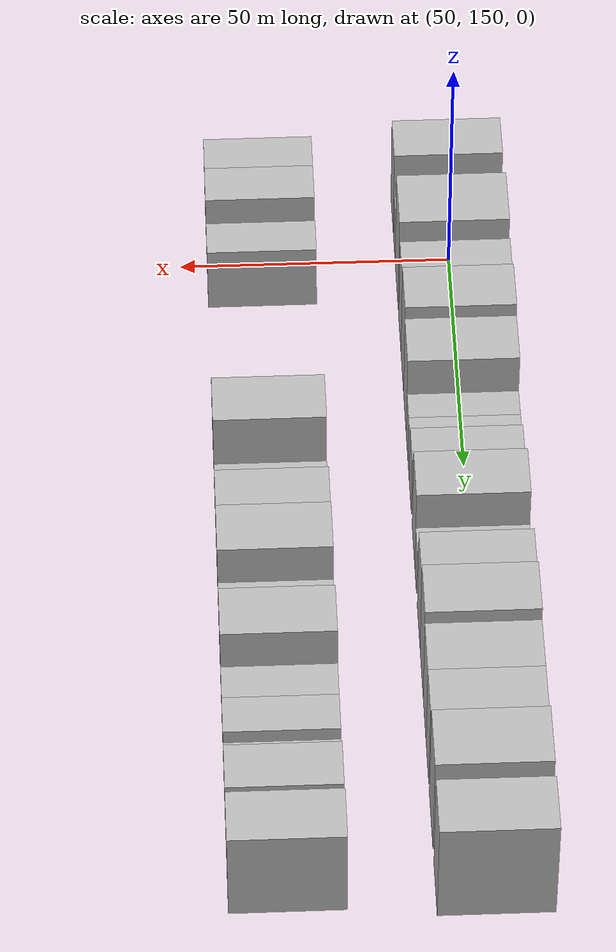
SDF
<sdf version="1.6">
 <world name="default">
  <model name="building_46">
   <static>1</static>
   <pose>50.0000 138.4492 0 0.000000 0.000000 0.000000</pose>
   <link name="link">
    <pose>0 0 10.50 0 0 0</pose>
    <collision name="collision"><geometry><box><size>20.0000 8.9101 21.0000</size></box></geometry></collision>
    <visual name="visual">
     <cast_shadows>0</cast_shadows>
     <geometry><box><size>20.0000 8.9101 21.0000</size></box></geometry>
     <material>
      <script>
       <uri>model://HANNAS_wall/materials/scripts</uri>
       <uri>model://HANNAS_wall/materials/textures</uri>
       <name>vrc/HANNAS_wall</name>
      </script>
     </material>
    </visual>
   </link>
  </model>
  <model name="building_47">
   <static>1</static>
   <pose>50.0000 147.7427 0 0.000000 0.000000 0.000000</pose>
   <link name="link">
    <pose>0 0 6.00 0 0 0</pose>
    <collision name="collision"><geometry><box><size>20.0000 5.6769 12.0000</size></box></geometry></collision>
    <visual name="visual">
     <cast_shadows>0</cast_shadows>
     <geometry><box><size>20.0000 5.6769 12.0000</size></box></geometry>
     <material>
      <script>
       <uri>model://HANNAS_wall/materials/scripts</uri>
       <uri>model://HANNAS_wall/materials/textures</uri>
       <name>vrc/HANNAS_wall</name>
      </script>
     </material>
    </visual>
   </link>
  </model>
  <model name="building_48">
   <static>1</static>
   <pose>50.0000 156.3697 0 0.000000 0.000000 0.000000</pose>
   <link name="link">
    <pose>0 0 12.00 0 0 0</pose>
    <collision name="collision"><geometry><box><size>20.0000 11.5769 24.0000</size></box></geometry></collision>
    <visual name="visual">
     <cast_shadows>0</cast_shadows>
     <geometry><box><size>20.0000 11.5769 24.0000</size></box></geometry>
     <material>
      <script>
       <uri>model://HANNAS_wall/materials/scripts</uri>
       <uri>model://HANNAS_wall/materials/textures</uri>
       <name>vrc/HANNAS_wall</name>
      </script>
     </material>
    </visual>
   </link>
  </model>
  <model name="building_49">
   <static>1</static>
   <pose>50.0000 168.6002 0 0.000000 0.000000 0.000000</pose>
   <link name="link">
    <pose>0 0 10.50 0 0 0</pose>
    <collision name="collision"><geometry><box><size>20.0000 8.8840 21.0000</size></box></geometry></collision>
    <visual name="visual">
     <cast_shadows>0</cast_shadows>
     <geometry><box><size>20.0000 8.8840 21.0000</size></box></geometry>
     <material>
      <script>
       <uri>model://HANNAS_wall/materials/scripts</uri>
       <uri>model://HANNAS_wall/materials/textures</uri>
       <name>vrc/HANNAS_wall</name>
      </script>
     </material>
    </visual>
   </link>
  </model>
  <model name="building_50">
   <static>1</static>
   <pose>50.0000 177.8979 0 0.000000 0.000000 0.000000</pose>
   <link name="link">
    <pose>0 0 12.00 0 0 0</pose>
    <collision name="collision"><geometry><box><size>20.0000 9.7113 24.0000</size></box></geometry></collision>
    <visual name="visual">
     <cast_shadows>0</cast_shadows>
     <geometry><box><size>20.0000 9.7113 24.0000</size></box></geometry>
     <material>
      <script>
       <uri>model://HANNAS_wall/materials/scripts</uri>
       <uri>model://HANNAS_wall/materials/textures</uri>
       <name>vrc/HANNAS_wall</name>
      </script>
     </material>
    </visual>
   </link>
  </model>
  <model name="building_51">
   <static>1</static>
   <pose>50.0000 187.7875 0 0.000000 0.000000 0.000000</pose>
   <link name="link">
    <pose>0 0 10.50 0 0 0</pose>
    <collision name="collision"><geometry><box><size>20.0000 10.0679 21.0000</size></box></geometry></collision>
    <visual name="visual">
     <cast_shadows>0</cast_shadows>
     <geometry><box><size>20.0000 10.0679 21.0000</size></box></geometry>
     <material>
      <script>
       <uri>model://HANNAS_wall/materials/scripts</uri>
       <uri>model://HANNAS_wall/materials/textures</uri>
       <name>vrc/HANNAS_wall</name>
      </script>
     </material>
    </visual>
   </link>
  </model>
  <model name="building_52">
   <static>1</static>
   <pose>50.0000 195.5727 0 0.000000 0.000000 0.000000</pose>
   <link name="link">
    <pose>0 0 6.00 0 0 0</pose>
    <collision name="collision"><geometry><box><size>20.0000 5.5025 12.0000</size></box></geometry></collision>
    <visual name="visual">
     <cast_shadows>0</cast_shadows>
     <geometry><box><size>20.0000 5.5025 12.0000</size></box></geometry>
     <material>
      <script>
       <uri>model://HANNAS_wall/materials/scripts</uri>
       <uri>model://HANNAS_wall/materials/textures</uri>
       <name>vrc/HANNAS_wall</name>
      </script>
     </material>
    </visual>
   </link>
  </model>
  <model name="building_53">
   <static>1</static>
   <pose>50.0000 200.8041 0 0.000000 0.000000 0.000000</pose>
   <link name="link">
    <pose>0 0 6.00 0 0 0</pose>
    <collision name="collision"><geometry><box><size>20.0000 4.9603 12.0000</size></box></geometry></collision>
    <visual name="visual">
     <cast_shadows>0</cast_shadows>
     <geometry><box><size>20.0000 4.9603 12.0000</size></box></geometry>
     <material>
      <script>
       <uri>model://HANNAS_wall/materials/scripts</uri>
       <uri>model://HANNAS_wall/materials/textures</uri>
       <name>vrc/HANNAS_wall</name>
      </script>
     </material>
    </visual>
   </link>
  </model>
  <model name="building_54">
   <static>1</static>
   <pose>50.0000 206.9999 0 0.000000 0.000000 0.000000</pose>
   <link name="link">
    <pose>0 0 7.50 0 0 0</pose>
    <collision name="collision"><geometry><box><size>20.0000 7.4313 15.0000</size></box></geometry></collision>
    <visual name="visual">
     <cast_shadows>0</cast_shadows>
     <geometry><box><size>20.0000 7.4313 15.0000</size></box></geometry>
     <material>
      <script>
       <uri>model://HANNAS_wall/materials/scripts</uri>
       <uri>model://HANNAS_wall/materials/textures</uri>
       <name>vrc/HANNAS_wall</name>
      </script>
     </material>
    </visual>
   </link>
  </model>
  <model name="building_55">
   <static>1</static>
   <pose>50.0000 218.6773 0 0.000000 0.000000 0.000000</pose>
   <link name="link">
    <pose>0 0 10.50 0 0 0</pose>
    <collision name="collision"><geometry><box><size>20.0000 9.9233 21.0000</size></box></geometry></collision>
    <visual name="visual">
     <cast_shadows>0</cast_shadows>
     <geometry><box><size>20.0000 9.9233 21.0000</size></box></geometry>
     <material>
      <script>
       <uri>model://HANNAS_wall/materials/scripts</uri>
       <uri>model://HANNAS_wall/materials/textures</uri>
       <name>vrc/HANNAS_wall</name>
      </script>
     </material>
    </visual>
   </link>
  </model>
  <model name="building_56">
   <static>1</static>
   <pose>50.0000 226.2310 0 0.000000 0.000000 0.000000</pose>
   <link name="link">
    <pose>0 0 6.00 0 0 0</pose>
    <collision name="collision"><geometry><box><size>20.0000 5.1842 12.0000</size></box></geometry></collision>
    <visual name="visual">
     <cast_shadows>0</cast_shadows>
     <geometry><box><size>20.0000 5.1842 12.0000</size></box></geometry>
     <material>
      <script>
       <uri>model://HANNAS_wall/materials/scripts</uri>
       <uri>model://HANNAS_wall/materials/textures</uri>
       <name>vrc/HANNAS_wall</name>
      </script>
     </material>
    </visual>
   </link>
  </model>
  <model name="building_57">
   <static>1</static>
   <pose>50.0000 236.6335 0 0.000000 0.000000 0.000000</pose>
   <link name="link">
    <pose>0 0 10.50 0 0 0</pose>
    <collision name="collision"><geometry><box><size>20.0000 9.6206 21.0000</size></box></geometry></collision>
    <visual name="visual">
     <cast_shadows>0</cast_shadows>
     <geometry><box><size>20.0000 9.6206 21.0000</size></box></geometry>
     <material>
      <script>
       <uri>model://HANNAS_wall/materials/scripts</uri>
       <uri>model://HANNAS_wall/materials/textures</uri>
       <name>vrc/HANNAS_wall</name>
      </script>
     </material>
    </visual>
   </link>
  </model>
  <model name="building_58">
   <static>1</static>
   <pose>50.0000 246.6107 0 0.000000 0.000000 0.000000</pose>
   <link name="link">
    <pose>0 0 12.00 0 0 0</pose>
    <collision name="collision"><geometry><box><size>20.0000 10.3339 24.0000</size></box></geometry></collision>
    <visual name="visual">
     <cast_shadows>0</cast_shadows>
     <geometry><box><size>20.0000 10.3339 24.0000</size></box></geometry>
     <material>
      <script>
       <uri>model://HANNAS_wall/materials/scripts</uri>
       <uri>model://HANNAS_wall/materials/textures</uri>
       <name>vrc/HANNAS_wall</name>
      </script>
     </material>
    </visual>
   </link>
  </model>
  <model name="building_59">
   <static>1</static>
   <pose>50.0000 256.7192 0 0.000000 0.000000 0.000000</pose>
   <link name="link">
    <pose>0 0 10.50 0 0 0</pose>
    <collision name="collision"><geometry><box><size>20.0000 9.8830 21.0000</size></box></geometry></collision>
    <visual name="visual">
     <cast_shadows>0</cast_shadows>
     <geometry><box><size>20.0000 9.8830 21.0000</size></box></geometry>
     <material>
      <script>
       <uri>model://HANNAS_wall/materials/scripts</uri>
       <uri>model://HANNAS_wall/materials/textures</uri>
       <name>vrc/HANNAS_wall</name>
      </script>
     </material>
    </visual>
   </link>
  </model>
  <model name="building_60">
   <static>1</static>
   <pose>50.0000 266.0381 0 0.000000 0.000000 0.000000</pose>
   <link name="link">
    <pose>0 0 10.50 0 0 0</pose>
    <collision name="collision"><geometry><box><size>20.0000 8.7548 21.0000</size></box></geometry></collision>
    <visual name="visual">
     <cast_shadows>0</cast_shadows>
     <geometry><box><size>20.0000 8.7548 21.0000</size></box></geometry>
     <material>
      <script>
       <uri>model://HANNAS_wall/materials/scripts</uri>
       <uri>model://HANNAS_wall/materials/textures</uri>
       <name>vrc/HANNAS_wall</name>
      </script>
     </material>
    </visual>
   </link>
  </model>
  <model name="building_61">
   <static>1</static>
   <pose>50.0000 278.1423 0 0.000000 0.000000 0.000000</pose>
   <link name="link">
    <pose>0 0 12.00 0 0 0</pose>
    <collision name="collision"><geometry><box><size>20.0000 11.4537 24.0000</size></box></geometry></collision>
    <visual name="visual">
     <cast_shadows>0</cast_shadows>
     <geometry><box><size>20.0000 11.4537 24.0000</size></box></geometry>
     <material>
      <script>
       <uri>model://HANNAS_wall/materials/scripts</uri>
       <uri>model://HANNAS_wall/materials/textures</uri>
       <name>vrc/HANNAS_wall</name>
      </script>
     </material>
    </visual>
   </link>
  </model>
  <model name="building_62">
   <static>1</static>
   <pose>50.0000 292.2194 0 0.000000 0.000000 0.000000</pose>
   <link name="link">
    <pose>0 0 12.00 0 0 0</pose>
    <collision name="collision"><geometry><box><size>20.0000 10.7004 24.0000</size></box></geometry></collision>
    <visual name="visual">
     <cast_shadows>0</cast_shadows>
     <geometry><box><size>20.0000 10.7004 24.0000</size></box></geometry>
     <material>
      <script>
       <uri>model://HANNAS_wall/materials/scripts</uri>
       <uri>model://HANNAS_wall/materials/textures</uri>
       <name>vrc/HANNAS_wall</name>
      </script>
     </material>
    </visual>
   </link>
  </model>
  <model name="building_112">
   <static>1</static>
   <pose>85.0000 138.1927 0 0.000000 0.000000 0.000000</pose>
   <link name="link">
    <pose>0 0 9.00 0 0 0</pose>
    <collision name="collision"><geometry><box><size>20.0000 7.3177 18.0000</size></box></geometry></collision>
    <visual name="visual">
     <cast_shadows>0</cast_shadows>
     <geometry><box><size>20.0000 7.3177 18.0000</size></box></geometry>
     <material>
      <script>
       <uri>model://HANNAS_wall/materials/scripts</uri>
       <uri>model://HANNAS_wall/materials/textures</uri>
       <name>vrc/HANNAS_wall</name>
      </script>
     </material>
    </visual>
   </link>
  </model>
  <model name="building_113">
   <static>1</static>
   <pose>85.0000 145.8714 0 0.000000 0.000000 0.000000</pose>
   <link name="link">
    <pose>0 0 9.00 0 0 0</pose>
    <collision name="collision"><geometry><box><size>20.0000 8.0398 18.0000</size></box></geometry></collision>
    <visual name="visual">
     <cast_shadows>0</cast_shadows>
     <geometry><box><size>20.0000 8.0398 18.0000</size></box></geometry>
     <material>
      <script>
       <uri>model://HANNAS_wall/materials/scripts</uri>
       <uri>model://HANNAS_wall/materials/textures</uri>
       <name>vrc/HANNAS_wall</name>
      </script>
     </material>
    </visual>
   </link>
  </model>
  <model name="building_114">
   <static>1</static>
   <pose>85.0000 156.4998 0 0.000000 0.000000 0.000000</pose>
   <link name="link">
    <pose>0 0 7.50 0 0 0</pose>
    <collision name="collision"><geometry><box><size>20.0000 7.2170 15.0000</size></box></geometry></collision>
    <visual name="visual">
     <cast_shadows>0</cast_shadows>
     <geometry><box><size>20.0000 7.2170 15.0000</size></box></geometry>
     <material>
      <script>
       <uri>model://HANNAS_wall/materials/scripts</uri>
       <uri>model://HANNAS_wall/materials/textures</uri>
       <name>vrc/HANNAS_wall</name>
      </script>
     </material>
    </visual>
   </link>
  </model>
  <model name="building_115">
   <static>1</static>
   <pose>85.0000 194.1776 0 0.000000 0.000000 0.000000</pose>
   <link name="link">
    <pose>0 0 7.50 0 0 0</pose>
    <collision name="collision"><geometry><box><size>20.0000 7.3795 15.0000</size></box></geometry></collision>
    <visual name="visual">
     <cast_shadows>0</cast_shadows>
     <geometry><box><size>20.0000 7.3795 15.0000</size></box></geometry>
     <material>
      <script>
       <uri>model://HANNAS_wall/materials/scripts</uri>
       <uri>model://HANNAS_wall/materials/textures</uri>
       <name>vrc/HANNAS_wall</name>
      </script>
     </material>
    </visual>
   </link>
  </model>
  <model name="building_116">
   <static>1</static>
   <pose>85.0000 202.7923 0 0.000000 0.000000 0.000000</pose>
   <link name="link">
    <pose>0 0 12.00 0 0 0</pose>
    <collision name="collision"><geometry><box><size>20.0000 9.8500 24.0000</size></box></geometry></collision>
    <visual name="visual">
     <cast_shadows>0</cast_shadows>
     <geometry><box><size>20.0000 9.8500 24.0000</size></box></geometry>
     <material>
      <script>
       <uri>model://HANNAS_wall/materials/scripts</uri>
       <uri>model://HANNAS_wall/materials/textures</uri>
       <name>vrc/HANNAS_wall</name>
      </script>
     </material>
    </visual>
   </link>
  </model>
  <model name="building_117">
   <static>1</static>
   <pose>85.0000 210.6076 0 0.000000 0.000000 0.000000</pose>
   <link name="link">
    <pose>0 0 6.00 0 0 0</pose>
    <collision name="collision"><geometry><box><size>20.0000 5.7805 12.0000</size></box></geometry></collision>
    <visual name="visual">
     <cast_shadows>0</cast_shadows>
     <geometry><box><size>20.0000 5.7805 12.0000</size></box></geometry>
     <material>
      <script>
       <uri>model://HANNAS_wall/materials/scripts</uri>
       <uri>model://HANNAS_wall/materials/textures</uri>
       <name>vrc/HANNAS_wall</name>
      </script>
     </material>
    </visual>
   </link>
  </model>
  <model name="building_118">
   <static>1</static>
   <pose>85.0000 221.6714 0 0.000000 0.000000 0.000000</pose>
   <link name="link">
    <pose>0 0 10.50 0 0 0</pose>
    <collision name="collision"><geometry><box><size>20.0000 10.3471 21.0000</size></box></geometry></collision>
    <visual name="visual">
     <cast_shadows>0</cast_shadows>
     <geometry><box><size>20.0000 10.3471 21.0000</size></box></geometry>
     <material>
      <script>
       <uri>model://HANNAS_wall/materials/scripts</uri>
       <uri>model://HANNAS_wall/materials/textures</uri>
       <name>vrc/HANNAS_wall</name>
      </script>
     </material>
    </visual>
   </link>
  </model>
  <model name="building_119">
   <static>1</static>
   <pose>85.0000 231.8455 0 0.000000 0.000000 0.000000</pose>
   <link name="link">
    <pose>0 0 12.00 0 0 0</pose>
    <collision name="collision"><geometry><box><size>20.0000 10.0012 24.0000</size></box></geometry></collision>
    <visual name="visual">
     <cast_shadows>0</cast_shadows>
     <geometry><box><size>20.0000 10.0012 24.0000</size></box></geometry>
     <material>
      <script>
       <uri>model://HANNAS_wall/materials/scripts</uri>
       <uri>model://HANNAS_wall/materials/textures</uri>
       <name>vrc/HANNAS_wall</name>
      </script>
     </material>
    </visual>
   </link>
  </model>
  <model name="building_120">
   <static>1</static>
   <pose>85.0000 240.0154 0 0.000000 0.000000 0.000000</pose>
   <link name="link">
    <pose>0 0 7.50 0 0 0</pose>
    <collision name="collision"><geometry><box><size>20.0000 6.3385 15.0000</size></box></geometry></collision>
    <visual name="visual">
     <cast_shadows>0</cast_shadows>
     <geometry><box><size>20.0000 6.3385 15.0000</size></box></geometry>
     <material>
      <script>
       <uri>model://HANNAS_wall/materials/scripts</uri>
       <uri>model://HANNAS_wall/materials/textures</uri>
       <name>vrc/HANNAS_wall</name>
      </script>
     </material>
    </visual>
   </link>
  </model>
  <model name="building_121">
   <static>1</static>
   <pose>85.0000 250.1653 0 0.000000 0.000000 0.000000</pose>
   <link name="link">
    <pose>0 0 12.00 0 0 0</pose>
    <collision name="collision"><geometry><box><size>20.0000 9.9612 24.0000</size></box></geometry></collision>
    <visual name="visual">
     <cast_shadows>0</cast_shadows>
     <geometry><box><size>20.0000 9.9612 24.0000</size></box></geometry>
     <material>
      <script>
       <uri>model://HANNAS_wall/materials/scripts</uri>
       <uri>model://HANNAS_wall/materials/textures</uri>
       <name>vrc/HANNAS_wall</name>
      </script>
     </material>
    </visual>
   </link>
  </model>
  <model name="building_122">
   <static>1</static>
   <pose>85.0000 258.4333 0 0.000000 0.000000 0.000000</pose>
   <link name="link">
    <pose>0 0 7.50 0 0 0</pose>
    <collision name="collision"><geometry><box><size>20.0000 6.5749 15.0000</size></box></geometry></collision>
    <visual name="visual">
     <cast_shadows>0</cast_shadows>
     <geometry><box><size>20.0000 6.5749 15.0000</size></box></geometry>
     <material>
      <script>
       <uri>model://HANNAS_wall/materials/scripts</uri>
       <uri>model://HANNAS_wall/materials/textures</uri>
       <name>vrc/HANNAS_wall</name>
      </script>
     </material>
    </visual>
   </link>
  </model>
  <model name="building_123">
   <static>1</static>
   <pose>85.0000 265.3670 0 0.000000 0.000000 0.000000</pose>
   <link name="link">
    <pose>0 0 7.50 0 0 0</pose>
    <collision name="collision"><geometry><box><size>20.0000 7.2924 15.0000</size></box></geometry></collision>
    <visual name="visual">
     <cast_shadows>0</cast_shadows>
     <geometry><box><size>20.0000 7.2924 15.0000</size></box></geometry>
     <material>
      <script>
       <uri>model://HANNAS_wall/materials/scripts</uri>
       <uri>model://HANNAS_wall/materials/textures</uri>
       <name>vrc/HANNAS_wall</name>
      </script>
     </material>
    </visual>
   </link>
  </model>
  <model name="building_124">
   <static>1</static>
   <pose>85.0000 271.4552 0 0.000000 0.000000 0.000000</pose>
   <link name="link">
    <pose>0 0 6.00 0 0 0</pose>
    <collision name="collision"><geometry><box><size>20.0000 4.8840 12.0000</size></box></geometry></collision>
    <visual name="visual">
     <cast_shadows>0</cast_shadows>
     <geometry><box><size>20.0000 4.8840 12.0000</size></box></geometry>
     <material>
      <script>
       <uri>model://HANNAS_wall/materials/scripts</uri>
       <uri>model://HANNAS_wall/materials/textures</uri>
       <name>vrc/HANNAS_wall</name>
      </script>
     </material>
    </visual>
   </link>
  </model>
  <model name="building_125">
   <static>1</static>
   <pose>85.0000 278.3399 0 0.000000 0.000000 0.000000</pose>
   <link name="link">
    <pose>0 0 9.00 0 0 0</pose>
    <collision name="collision"><geometry><box><size>20.0000 8.8853 18.0000</size></box></geometry></collision>
    <visual name="visual">
     <cast_shadows>0</cast_shadows>
     <geometry><box><size>20.0000 8.8853 18.0000</size></box></geometry>
     <material>
      <script>
       <uri>model://HANNAS_wall/materials/scripts</uri>
       <uri>model://HANNAS_wall/materials/textures</uri>
       <name>vrc/HANNAS_wall</name>
      </script>
     </material>
    </visual>
   </link>
  </model>
  <model name="building_126">
   <static>1</static>
   <pose>85.0000 290.7631 0 0.000000 0.000000 0.000000</pose>
   <link name="link">
    <pose>0 0 10.50 0 0 0</pose>
    <collision name="collision"><geometry><box><size>20.0000 9.9610 21.0000</size></box></geometry></collision>
    <visual name="visual">
     <cast_shadows>0</cast_shadows>
     <geometry><box><size>20.0000 9.9610 21.0000</size></box></geometry>
     <material>
      <script>
       <uri>model://HANNAS_wall/materials/scripts</uri>
       <uri>model://HANNAS_wall/materials/textures</uri>
       <name>vrc/HANNAS_wall</name>
      </script>
     </material>
    </visual>
   </link>
  </model>
 </world>
</sdf>
